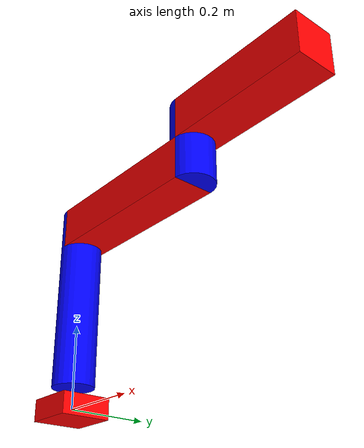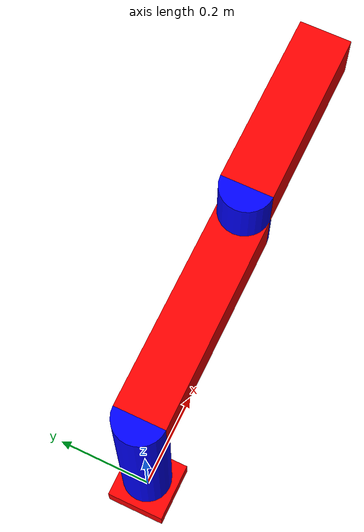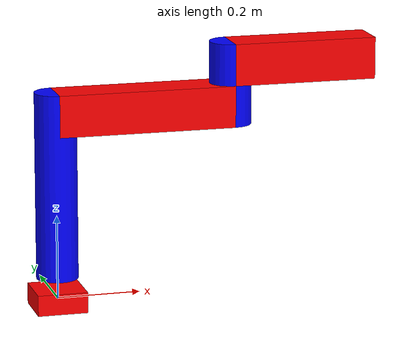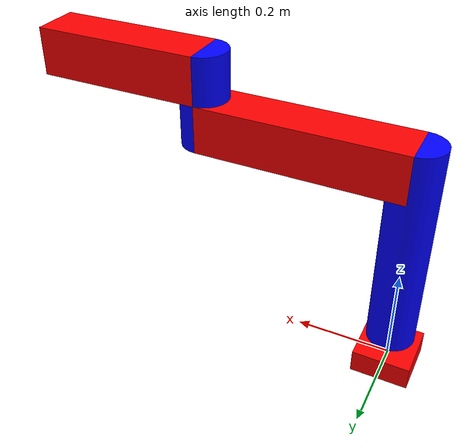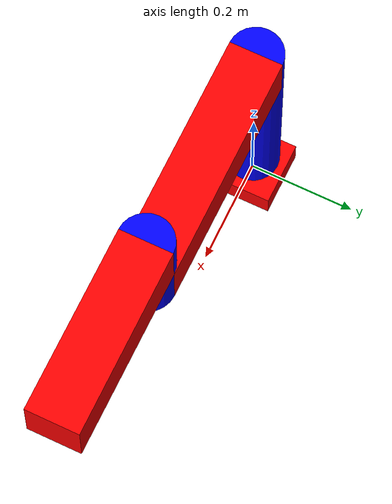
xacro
<?xml version = "1.0"?>
<robot name = "scara" xmlns:xacro="http://www.ros.org/wiki/xacro">

  <!-- Used for fixing robot to 'base_link' -->
  <link name="base_link"/>

  <material name="blue">
    <color rgba="0 0 1 1" />
  </material>

  <material name="red">
    <color rgba="1 0 0 1" />
  </material>

  <material name="green">
    <color rgba="0 1 0 1" />
  </material>

  <!-- Links-->
  <link name = "link_1">
    <visual>
      <geometry>
        <box size = "0.12 0.12 0.05"/>
      </geometry>
      <material name = "red"/>
      <origin xyz = "0 0 0"/>
    </visual>
    <inertial>
      <mass value="1" />
      <origin xyz="0 0 0.025" rpy="0 0 0" />
      <inertia ixx="1" ixy="0" ixz="0" iyy="1" iyz="0" izz="1" />
    </inertial>
  </link>

  <link name = "link_2">
    <visual>
      <geometry>
        <cylinder length = "0.45" radius = "0.05"/>
      </geometry>
      <material name = "blue"/>
      <origin xyz = "0 0 0.225"/>
    </visual>
    <inertial>
      <mass value="0.5" />
      <origin xyz="0 0 0.05" rpy="0 0 0" />
      <inertia ixx="0.5" ixy="0" ixz="0" iyy="0.5" iyz="0" izz="0.5" />
    </inertial>
  </link>

  <link name = "link_3">
    <visual>
      <geometry>
        <box size = "0.1 0.1 0.425"/>
      </geometry>
      <material name = "red"/>
      <origin rpy = "0 1.571 0" xyz = "0.2125 0 0"/>
    </visual>
    <inertial>
      <mass value="0.5" />
      <origin xyz="0.2125 0 0" rpy="0 0 0" />
      <inertia ixx="0.5" ixy="0" ixz="0" iyy="0.5" iyz="0" izz="0.5" />
    </inertial>
  </link>

  <link name = "link_4">
    <visual>
      <geometry>
        <cylinder length = "0.2" radius = "0.05"/>
      </geometry>
      <material name = "blue"/>
      <origin rpy = "0 0 0" xyz = "0 0 0"/>
    </visual>
    <inertial>
      <mass value="0.5" />
      <origin xyz="0 0 0" rpy="0 0 0" />
      v<inertia ixx="0.5" ixy="0" ixz="0" iyy="0.5" iyz="0" izz="0.5" />
    </inertial>
  </link>

  <link name = "link_5">
    <visual>
      <geometry>
        <box size = "0.1 0.1 0.345"/>
      </geometry>
      <material name = "red"/>
      <origin rpy = "0 1.571 0" xyz = "0.1725 0 0"/>
    </visual>
    <inertial>
      <mass value="0.5" />
      <origin xyz="0.1725 0 0" rpy="0 0 0" />
      v<inertia ixx="0.5" ixy="0" ixz="0" iyy="0.5" iyz="0" izz="0.5" />
    </inertial>
  </link>

  <!--Fixed joint-->
  <joint name="fixedjoint_1" type="fixed">
    <parent link="base_link"/>
    <child link="link_1"/>
  </joint>

  <joint name = "fixedjoint_2" type="fixed">
    <parent link = "link_2"/>
    <child link = "link_3"/>
    <origin xyz = "0 0 0.4"/>
  </joint>

  <joint name = "fixedjoint_3" type="fixed">
    <parent link = "link_4"/>
    <child link = "link_5"/>
    <origin xyz = "0 0 0.05"/>
  </joint>

  <!-- rotating joints  -->
  <joint name = "revolute_1" type="revolute">
    <parent link = "link_1"/>
    <child link = "link_2"/>
    <origin xyz = "0 0 0.05"/>
    <limit effort="1000.0" lower="-1.57" upper="1.57" velocity="0.5"/>
    <axis xyz = "0 0 1"/>
    <dynamics damping="0.2" friction="0.1" />
  </joint>

  <joint name = "revolute_2" type="revolute">
    <parent link = "link_3"/>
    <child link = "link_4"/>
    <origin xyz = "0.425 0 0.05"/>
    <limit effort="1000.0" lower="-1.57" upper="1.57" velocity="0.5"/>
    <axis xyz = "0 0 1"/>
    <dynamics damping="0.2" friction="0.1" />
  </joint>

</robot>
